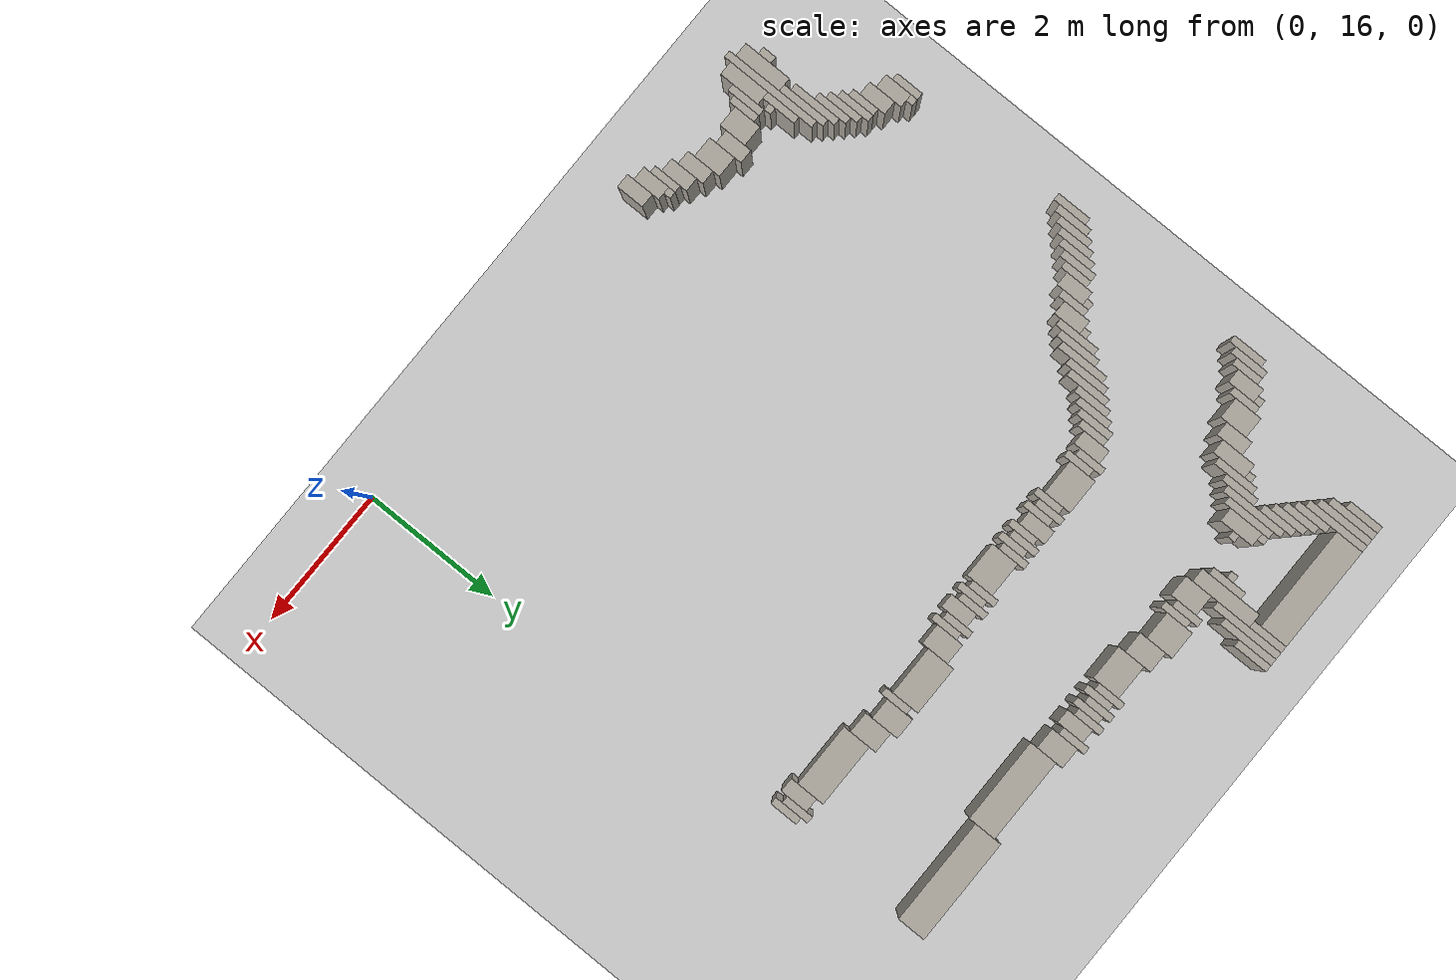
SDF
<sdf version="1.6">
 <world name="willow_office">
  <include><uri>model://sun</uri></include>
  <include><uri>model://ground_plane</uri></include>
  <model name="willow_office_walls">
   <static>true</static>
   <link name="w0973">
    <pose>-7.135 16.762 0.500 0 0 0</pose>
    <collision name="c"><geometry><box><size>0.100 1.400 1.000</size></box></geometry></collision>
    <visual name="v">
     <geometry><box><size>0.100 1.400 1.000</size></box></geometry>
     <material><ambient>0.68 0.66 0.62 1</ambient><diffuse>0.68 0.66 0.62 1</diffuse></material>
    </visual>
   </link>
   <link name="w0974">
    <pose>-5.085 16.262 0.500 0 0 0</pose>
    <collision name="c"><geometry><box><size>0.200 0.400 1.000</size></box></geometry></collision>
    <visual name="v">
     <geometry><box><size>0.200 0.400 1.000</size></box></geometry>
     <material><ambient>0.68 0.66 0.62 1</ambient><diffuse>0.68 0.66 0.62 1</diffuse></material>
    </visual>
   </link>
   <link name="w0977">
    <pose>-7.285 16.512 0.500 0 0 0</pose>
    <collision name="c"><geometry><box><size>0.200 0.700 1.000</size></box></geometry></collision>
    <visual name="v">
     <geometry><box><size>0.200 0.700 1.000</size></box></geometry>
     <material><ambient>0.68 0.66 0.62 1</ambient><diffuse>0.68 0.66 0.62 1</diffuse></material>
    </visual>
   </link>
   <link name="w0978">
    <pose>-6.985 16.462 0.500 0 0 0</pose>
    <collision name="c"><geometry><box><size>0.200 0.600 1.000</size></box></geometry></collision>
    <visual name="v">
     <geometry><box><size>0.200 0.600 1.000</size></box></geometry>
     <material><ambient>0.68 0.66 0.62 1</ambient><diffuse>0.68 0.66 0.62 1</diffuse></material>
    </visual>
   </link>
   <link name="w0979">
    <pose>-5.285 16.362 0.500 0 0 0</pose>
    <collision name="c"><geometry><box><size>0.200 0.400 1.000</size></box></geometry></collision>
    <visual name="v">
     <geometry><box><size>0.200 0.400 1.000</size></box></geometry>
     <material><ambient>0.68 0.66 0.62 1</ambient><diffuse>0.68 0.66 0.62 1</diffuse></material>
    </visual>
   </link>
   <link name="w0983">
    <pose>-5.435 16.462 0.500 0 0 0</pose>
    <collision name="c"><geometry><box><size>0.100 0.400 1.000</size></box></geometry></collision>
    <visual name="v">
     <geometry><box><size>0.100 0.400 1.000</size></box></geometry>
     <material><ambient>0.68 0.66 0.62 1</ambient><diffuse>0.68 0.66 0.62 1</diffuse></material>
    </visual>
   </link>
   <link name="w0986">
    <pose>-7.435 16.462 0.500 0 0 0</pose>
    <collision name="c"><geometry><box><size>0.100 0.200 1.000</size></box></geometry></collision>
    <visual name="v">
     <geometry><box><size>0.100 0.200 1.000</size></box></geometry>
     <material><ambient>0.68 0.66 0.62 1</ambient><diffuse>0.68 0.66 0.62 1</diffuse></material>
    </visual>
   </link>
   <link name="w0987">
    <pose>-6.835 16.612 0.500 0 0 0</pose>
    <collision name="c"><geometry><box><size>0.100 0.500 1.000</size></box></geometry></collision>
    <visual name="v">
     <geometry><box><size>0.100 0.500 1.000</size></box></geometry>
     <material><ambient>0.68 0.66 0.62 1</ambient><diffuse>0.68 0.66 0.62 1</diffuse></material>
    </visual>
   </link>
   <link name="w0988">
    <pose>-5.585 16.562 0.500 0 0 0</pose>
    <collision name="c"><geometry><box><size>0.200 0.400 1.000</size></box></geometry></collision>
    <visual name="v">
     <geometry><box><size>0.200 0.400 1.000</size></box></geometry>
     <material><ambient>0.68 0.66 0.62 1</ambient><diffuse>0.68 0.66 0.62 1</diffuse></material>
    </visual>
   </link>
   <link name="w0990">
    <pose>-6.735 16.662 0.500 0 0 0</pose>
    <collision name="c"><geometry><box><size>0.100 0.400 1.000</size></box></geometry></collision>
    <visual name="v">
     <geometry><box><size>0.100 0.400 1.000</size></box></geometry>
     <material><ambient>0.68 0.66 0.62 1</ambient><diffuse>0.68 0.66 0.62 1</diffuse></material>
    </visual>
   </link>
   <link name="w0991">
    <pose>-5.785 16.662 0.500 0 0 0</pose>
    <collision name="c"><geometry><box><size>0.200 0.400 1.000</size></box></geometry></collision>
    <visual name="v">
     <geometry><box><size>0.200 0.400 1.000</size></box></geometry>
     <material><ambient>0.68 0.66 0.62 1</ambient><diffuse>0.68 0.66 0.62 1</diffuse></material>
    </visual>
   </link>
   <link name="w0993">
    <pose>-6.535 16.762 0.500 0 0 0</pose>
    <collision name="c"><geometry><box><size>0.300 0.400 1.000</size></box></geometry></collision>
    <visual name="v">
     <geometry><box><size>0.300 0.400 1.000</size></box></geometry>
     <material><ambient>0.68 0.66 0.62 1</ambient><diffuse>0.68 0.66 0.62 1</diffuse></material>
    </visual>
   </link>
   <link name="w0994">
    <pose>-6.035 16.762 0.500 0 0 0</pose>
    <collision name="c"><geometry><box><size>0.300 0.400 1.000</size></box></geometry></collision>
    <visual name="v">
     <geometry><box><size>0.300 0.400 1.000</size></box></geometry>
     <material><ambient>0.68 0.66 0.62 1</ambient><diffuse>0.68 0.66 0.62 1</diffuse></material>
    </visual>
   </link>
   <link name="w0995">
    <pose>-5.335 16.612 0.500 0 0 0</pose>
    <collision name="c"><geometry><box><size>0.100 0.100 1.000</size></box></geometry></collision>
    <visual name="v">
     <geometry><box><size>0.100 0.100 1.000</size></box></geometry>
     <material><ambient>0.68 0.66 0.62 1</ambient><diffuse>0.68 0.66 0.62 1</diffuse></material>
    </visual>
   </link>
   <link name="w0998">
    <pose>-6.285 16.862 0.500 0 0 0</pose>
    <collision name="c"><geometry><box><size>0.200 0.400 1.000</size></box></geometry></collision>
    <visual name="v">
     <geometry><box><size>0.200 0.400 1.000</size></box></geometry>
     <material><ambient>0.68 0.66 0.62 1</ambient><diffuse>0.68 0.66 0.62 1</diffuse></material>
    </visual>
   </link>
   <link name="w0999">
    <pose>-7.035 17.012 0.500 0 0 0</pose>
    <collision name="c"><geometry><box><size>0.100 0.500 1.000</size></box></geometry></collision>
    <visual name="v">
     <geometry><box><size>0.100 0.500 1.000</size></box></geometry>
     <material><ambient>0.68 0.66 0.62 1</ambient><diffuse>0.68 0.66 0.62 1</diffuse></material>
    </visual>
   </link>
   <link name="w1001">
    <pose>-7.235 17.212 0.500 0 0 0</pose>
    <collision name="c"><geometry><box><size>0.100 0.700 1.000</size></box></geometry></collision>
    <visual name="v">
     <geometry><box><size>0.100 0.700 1.000</size></box></geometry>
     <material><ambient>0.68 0.66 0.62 1</ambient><diffuse>0.68 0.66 0.62 1</diffuse></material>
    </visual>
   </link>
   <link name="w1002">
    <pose>-6.935 16.912 0.500 0 0 0</pose>
    <collision name="c"><geometry><box><size>0.100 0.100 1.000</size></box></geometry></collision>
    <visual name="v">
     <geometry><box><size>0.100 0.100 1.000</size></box></geometry>
     <material><ambient>0.68 0.66 0.62 1</ambient><diffuse>0.68 0.66 0.62 1</diffuse></material>
    </visual>
   </link>
   <link name="w1005">
    <pose>-7.335 17.312 0.500 0 0 0</pose>
    <collision name="c"><geometry><box><size>0.100 0.700 1.000</size></box></geometry></collision>
    <visual name="v">
     <geometry><box><size>0.100 0.700 1.000</size></box></geometry>
     <material><ambient>0.68 0.66 0.62 1</ambient><diffuse>0.68 0.66 0.62 1</diffuse></material>
    </visual>
   </link>
   <link name="w1011">
    <pose>-7.435 17.512 0.500 0 0 0</pose>
    <collision name="c"><geometry><box><size>0.100 0.500 1.000</size></box></geometry></collision>
    <visual name="v">
     <geometry><box><size>0.100 0.500 1.000</size></box></geometry>
     <material><ambient>0.68 0.66 0.62 1</ambient><diffuse>0.68 0.66 0.62 1</diffuse></material>
    </visual>
   </link>
   <link name="w1012">
    <pose>-7.535 17.612 0.500 0 0 0</pose>
    <collision name="c"><geometry><box><size>0.100 0.500 1.000</size></box></geometry></collision>
    <visual name="v">
     <geometry><box><size>0.100 0.500 1.000</size></box></geometry>
     <material><ambient>0.68 0.66 0.62 1</ambient><diffuse>0.68 0.66 0.62 1</diffuse></material>
    </visual>
   </link>
   <link name="w1015">
    <pose>-7.635 17.712 0.500 0 0 0</pose>
    <collision name="c"><geometry><box><size>0.100 0.500 1.000</size></box></geometry></collision>
    <visual name="v">
     <geometry><box><size>0.100 0.500 1.000</size></box></geometry>
     <material><ambient>0.68 0.66 0.62 1</ambient><diffuse>0.68 0.66 0.62 1</diffuse></material>
    </visual>
   </link>
   <link name="w1019">
    <pose>-7.735 17.762 0.500 0 0 0</pose>
    <collision name="c"><geometry><box><size>0.100 0.400 1.000</size></box></geometry></collision>
    <visual name="v">
     <geometry><box><size>0.100 0.400 1.000</size></box></geometry>
     <material><ambient>0.68 0.66 0.62 1</ambient><diffuse>0.68 0.66 0.62 1</diffuse></material>
    </visual>
   </link>
   <link name="w1021">
    <pose>-7.885 17.862 0.500 0 0 0</pose>
    <collision name="c"><geometry><box><size>0.200 0.400 1.000</size></box></geometry></collision>
    <visual name="v">
     <geometry><box><size>0.200 0.400 1.000</size></box></geometry>
     <material><ambient>0.68 0.66 0.62 1</ambient><diffuse>0.68 0.66 0.62 1</diffuse></material>
    </visual>
   </link>
   <link name="w1026">
    <pose>-8.085 17.962 0.500 0 0 0</pose>
    <collision name="c"><geometry><box><size>0.200 0.400 1.000</size></box></geometry></collision>
    <visual name="v">
     <geometry><box><size>0.200 0.400 1.000</size></box></geometry>
     <material><ambient>0.68 0.66 0.62 1</ambient><diffuse>0.68 0.66 0.62 1</diffuse></material>
    </visual>
   </link>
   <link name="w1028">
    <pose>-8.235 18.062 0.500 0 0 0</pose>
    <collision name="c"><geometry><box><size>0.100 0.400 1.000</size></box></geometry></collision>
    <visual name="v">
     <geometry><box><size>0.100 0.400 1.000</size></box></geometry>
     <material><ambient>0.68 0.66 0.62 1</ambient><diffuse>0.68 0.66 0.62 1</diffuse></material>
    </visual>
   </link>
   <link name="w1039">
    <pose>-8.135 18.212 0.500 0 0 0</pose>
    <collision name="c"><geometry><box><size>0.100 0.100 1.000</size></box></geometry></collision>
    <visual name="v">
     <geometry><box><size>0.100 0.100 1.000</size></box></geometry>
     <material><ambient>0.68 0.66 0.62 1</ambient><diffuse>0.68 0.66 0.62 1</diffuse></material>
    </visual>
   </link>
   <link name="w1137">
    <pose>-8.335 20.612 0.500 0 0 0</pose>
    <collision name="c"><geometry><box><size>0.100 0.500 1.000</size></box></geometry></collision>
    <visual name="v">
     <geometry><box><size>0.100 0.500 1.000</size></box></geometry>
     <material><ambient>0.68 0.66 0.62 1</ambient><diffuse>0.68 0.66 0.62 1</diffuse></material>
    </visual>
   </link>
   <link name="w1138">
    <pose>-8.235 20.712 0.500 0 0 0</pose>
    <collision name="c"><geometry><box><size>0.100 0.500 1.000</size></box></geometry></collision>
    <visual name="v">
     <geometry><box><size>0.100 0.500 1.000</size></box></geometry>
     <material><ambient>0.68 0.66 0.62 1</ambient><diffuse>0.68 0.66 0.62 1</diffuse></material>
    </visual>
   </link>
   <link name="w1140">
    <pose>-8.135 20.812 0.500 0 0 0</pose>
    <collision name="c"><geometry><box><size>0.100 0.500 1.000</size></box></geometry></collision>
    <visual name="v">
     <geometry><box><size>0.100 0.500 1.000</size></box></geometry>
     <material><ambient>0.68 0.66 0.62 1</ambient><diffuse>0.68 0.66 0.62 1</diffuse></material>
    </visual>
   </link>
   <link name="w1142">
    <pose>-8.035 20.912 0.500 0 0 0</pose>
    <collision name="c"><geometry><box><size>0.100 0.500 1.000</size></box></geometry></collision>
    <visual name="v">
     <geometry><box><size>0.100 0.500 1.000</size></box></geometry>
     <material><ambient>0.68 0.66 0.62 1</ambient><diffuse>0.68 0.66 0.62 1</diffuse></material>
    </visual>
   </link>
   <link name="w1144">
    <pose>-7.935 21.012 0.500 0 0 0</pose>
    <collision name="c"><geometry><box><size>0.100 0.500 1.000</size></box></geometry></collision>
    <visual name="v">
     <geometry><box><size>0.100 0.500 1.000</size></box></geometry>
     <material><ambient>0.68 0.66 0.62 1</ambient><diffuse>0.68 0.66 0.62 1</diffuse></material>
    </visual>
   </link>
   <link name="w1146">
    <pose>-7.835 21.112 0.500 0 0 0</pose>
    <collision name="c"><geometry><box><size>0.100 0.500 1.000</size></box></geometry></collision>
    <visual name="v">
     <geometry><box><size>0.100 0.500 1.000</size></box></geometry>
     <material><ambient>0.68 0.66 0.62 1</ambient><diffuse>0.68 0.66 0.62 1</diffuse></material>
    </visual>
   </link>
   <link name="w1148">
    <pose>-7.735 21.162 0.500 0 0 0</pose>
    <collision name="c"><geometry><box><size>0.100 0.400 1.000</size></box></geometry></collision>
    <visual name="v">
     <geometry><box><size>0.100 0.400 1.000</size></box></geometry>
     <material><ambient>0.68 0.66 0.62 1</ambient><diffuse>0.68 0.66 0.62 1</diffuse></material>
    </visual>
   </link>
   <link name="w1150">
    <pose>-7.585 21.262 0.500 0 0 0</pose>
    <collision name="c"><geometry><box><size>0.200 0.400 1.000</size></box></geometry></collision>
    <visual name="v">
     <geometry><box><size>0.200 0.400 1.000</size></box></geometry>
     <material><ambient>0.68 0.66 0.62 1</ambient><diffuse>0.68 0.66 0.62 1</diffuse></material>
    </visual>
   </link>
   <link name="w1156">
    <pose>-7.435 21.362 0.500 0 0 0</pose>
    <collision name="c"><geometry><box><size>0.100 0.400 1.000</size></box></geometry></collision>
    <visual name="v">
     <geometry><box><size>0.100 0.400 1.000</size></box></geometry>
     <material><ambient>0.68 0.66 0.62 1</ambient><diffuse>0.68 0.66 0.62 1</diffuse></material>
    </visual>
   </link>
   <link name="w1161">
    <pose>-7.285 21.462 0.500 0 0 0</pose>
    <collision name="c"><geometry><box><size>0.200 0.400 1.000</size></box></geometry></collision>
    <visual name="v">
     <geometry><box><size>0.200 0.400 1.000</size></box></geometry>
     <material><ambient>0.68 0.66 0.62 1</ambient><diffuse>0.68 0.66 0.62 1</diffuse></material>
    </visual>
   </link>
   <link name="w1166">
    <pose>-7.135 21.662 0.500 0 0 0</pose>
    <collision name="c"><geometry><box><size>0.100 0.600 1.000</size></box></geometry></collision>
    <visual name="v">
     <geometry><box><size>0.100 0.600 1.000</size></box></geometry>
     <material><ambient>0.68 0.66 0.62 1</ambient><diffuse>0.68 0.66 0.62 1</diffuse></material>
    </visual>
   </link>
   <link name="w1169">
    <pose>-7.535 21.512 0.500 0 0 0</pose>
    <collision name="c"><geometry><box><size>0.100 0.100 1.000</size></box></geometry></collision>
    <visual name="v">
     <geometry><box><size>0.100 0.100 1.000</size></box></geometry>
     <material><ambient>0.68 0.66 0.62 1</ambient><diffuse>0.68 0.66 0.62 1</diffuse></material>
    </visual>
   </link>
   <link name="w1170">
    <pose>-7.035 21.762 0.500 0 0 0</pose>
    <collision name="c"><geometry><box><size>0.100 0.600 1.000</size></box></geometry></collision>
    <visual name="v">
     <geometry><box><size>0.100 0.600 1.000</size></box></geometry>
     <material><ambient>0.68 0.66 0.62 1</ambient><diffuse>0.68 0.66 0.62 1</diffuse></material>
    </visual>
   </link>
   <link name="w1174">
    <pose>-6.935 21.912 0.500 0 0 0</pose>
    <collision name="c"><geometry><box><size>0.100 0.700 1.000</size></box></geometry></collision>
    <visual name="v">
     <geometry><box><size>0.100 0.700 1.000</size></box></geometry>
     <material><ambient>0.68 0.66 0.62 1</ambient><diffuse>0.68 0.66 0.62 1</diffuse></material>
    </visual>
   </link>
   <link name="w1178">
    <pose>-7.235 21.712 0.500 0 0 0</pose>
    <collision name="c"><geometry><box><size>0.100 0.100 1.000</size></box></geometry></collision>
    <visual name="v">
     <geometry><box><size>0.100 0.100 1.000</size></box></geometry>
     <material><ambient>0.68 0.66 0.62 1</ambient><diffuse>0.68 0.66 0.62 1</diffuse></material>
    </visual>
   </link>
   <link name="w1184">
    <pose>-6.835 22.062 0.500 0 0 0</pose>
    <collision name="c"><geometry><box><size>0.100 0.600 1.000</size></box></geometry></collision>
    <visual name="v">
     <geometry><box><size>0.100 0.600 1.000</size></box></geometry>
     <material><ambient>0.68 0.66 0.62 1</ambient><diffuse>0.68 0.66 0.62 1</diffuse></material>
    </visual>
   </link>
   <link name="w1189">
    <pose>-6.735 22.162 0.500 0 0 0</pose>
    <collision name="c"><geometry><box><size>0.100 0.600 1.000</size></box></geometry></collision>
    <visual name="v">
     <geometry><box><size>0.100 0.600 1.000</size></box></geometry>
     <material><ambient>0.68 0.66 0.62 1</ambient><diffuse>0.68 0.66 0.62 1</diffuse></material>
    </visual>
   </link>
   <link name="w1199">
    <pose>-6.635 22.312 0.500 0 0 0</pose>
    <collision name="c"><geometry><box><size>0.100 0.500 1.000</size></box></geometry></collision>
    <visual name="v">
     <geometry><box><size>0.100 0.500 1.000</size></box></geometry>
     <material><ambient>0.68 0.66 0.62 1</ambient><diffuse>0.68 0.66 0.62 1</diffuse></material>
    </visual>
   </link>
   <link name="w1206">
    <pose>-6.535 22.412 0.500 0 0 0</pose>
    <collision name="c"><geometry><box><size>0.100 0.500 1.000</size></box></geometry></collision>
    <visual name="v">
     <geometry><box><size>0.100 0.500 1.000</size></box></geometry>
     <material><ambient>0.68 0.66 0.62 1</ambient><diffuse>0.68 0.66 0.62 1</diffuse></material>
    </visual>
   </link>
   <link name="w1212">
    <pose>-6.435 22.512 0.500 0 0 0</pose>
    <collision name="c"><geometry><box><size>0.100 0.500 1.000</size></box></geometry></collision>
    <visual name="v">
     <geometry><box><size>0.100 0.500 1.000</size></box></geometry>
     <material><ambient>0.68 0.66 0.62 1</ambient><diffuse>0.68 0.66 0.62 1</diffuse></material>
    </visual>
   </link>
   <link name="w1216">
    <pose>-6.335 22.562 0.500 0 0 0</pose>
    <collision name="c"><geometry><box><size>0.100 0.400 1.000</size></box></geometry></collision>
    <visual name="v">
     <geometry><box><size>0.100 0.400 1.000</size></box></geometry>
     <material><ambient>0.68 0.66 0.62 1</ambient><diffuse>0.68 0.66 0.62 1</diffuse></material>
    </visual>
   </link>
   <link name="w1217">
    <pose>-0.585 22.562 0.500 0 0 0</pose>
    <collision name="c"><geometry><box><size>0.200 0.400 1.000</size></box></geometry></collision>
    <visual name="v">
     <geometry><box><size>0.200 0.400 1.000</size></box></geometry>
     <material><ambient>0.68 0.66 0.62 1</ambient><diffuse>0.68 0.66 0.62 1</diffuse></material>
    </visual>
   </link>
   <link name="w1218">
    <pose>-0.335 22.562 0.500 0 0 0</pose>
    <collision name="c"><geometry><box><size>0.100 0.400 1.000</size></box></geometry></collision>
    <visual name="v">
     <geometry><box><size>0.100 0.400 1.000</size></box></geometry>
     <material><ambient>0.68 0.66 0.62 1</ambient><diffuse>0.68 0.66 0.62 1</diffuse></material>
    </visual>
   </link>
   <link name="w1229">
    <pose>-6.185 22.662 0.500 0 0 0</pose>
    <collision name="c"><geometry><box><size>0.200 0.400 1.000</size></box></geometry></collision>
    <visual name="v">
     <geometry><box><size>0.200 0.400 1.000</size></box></geometry>
     <material><ambient>0.68 0.66 0.62 1</ambient><diffuse>0.68 0.66 0.62 1</diffuse></material>
    </visual>
   </link>
   <link name="w1230">
    <pose>-5.935 22.662 0.500 0 0 0</pose>
    <collision name="c"><geometry><box><size>0.100 0.400 1.000</size></box></geometry></collision>
    <visual name="v">
     <geometry><box><size>0.100 0.400 1.000</size></box></geometry>
     <material><ambient>0.68 0.66 0.62 1</ambient><diffuse>0.68 0.66 0.62 1</diffuse></material>
    </visual>
   </link>
   <link name="w1231">
    <pose>-5.335 22.662 0.500 0 0 0</pose>
    <collision name="c"><geometry><box><size>0.100 0.400 1.000</size></box></geometry></collision>
    <visual name="v">
     <geometry><box><size>0.100 0.400 1.000</size></box></geometry>
     <material><ambient>0.68 0.66 0.62 1</ambient><diffuse>0.68 0.66 0.62 1</diffuse></material>
    </visual>
   </link>
   <link name="w1232">
    <pose>-5.135 22.662 0.500 0 0 0</pose>
    <collision name="c"><geometry><box><size>0.100 0.400 1.000</size></box></geometry></collision>
    <visual name="v">
     <geometry><box><size>0.100 0.400 1.000</size></box></geometry>
     <material><ambient>0.68 0.66 0.62 1</ambient><diffuse>0.68 0.66 0.62 1</diffuse></material>
    </visual>
   </link>
   <link name="w1233">
    <pose>-4.835 22.662 0.500 0 0 0</pose>
    <collision name="c"><geometry><box><size>0.100 0.400 1.000</size></box></geometry></collision>
    <visual name="v">
     <geometry><box><size>0.100 0.400 1.000</size></box></geometry>
     <material><ambient>0.68 0.66 0.62 1</ambient><diffuse>0.68 0.66 0.62 1</diffuse></material>
    </visual>
   </link>
   <link name="w1234">
    <pose>-4.635 22.662 0.500 0 0 0</pose>
    <collision name="c"><geometry><box><size>0.100 0.400 1.000</size></box></geometry></collision>
    <visual name="v">
     <geometry><box><size>0.100 0.400 1.000</size></box></geometry>
     <material><ambient>0.68 0.66 0.62 1</ambient><diffuse>0.68 0.66 0.62 1</diffuse></material>
    </visual>
   </link>
   <link name="w1235">
    <pose>-4.235 22.662 0.500 0 0 0</pose>
    <collision name="c"><geometry><box><size>0.500 0.400 1.000</size></box></geometry></collision>
    <visual name="v">
     <geometry><box><size>0.500 0.400 1.000</size></box></geometry>
     <material><ambient>0.68 0.66 0.62 1</ambient><diffuse>0.68 0.66 0.62 1</diffuse></material>
    </visual>
   </link>
   <link name="w1236">
    <pose>-3.835 22.662 0.500 0 0 0</pose>
    <collision name="c"><geometry><box><size>0.100 0.400 1.000</size></box></geometry></collision>
    <visual name="v">
     <geometry><box><size>0.100 0.400 1.000</size></box></geometry>
     <material><ambient>0.68 0.66 0.62 1</ambient><diffuse>0.68 0.66 0.62 1</diffuse></material>
    </visual>
   </link>
   <link name="w1237">
    <pose>-3.585 22.662 0.500 0 0 0</pose>
    <collision name="c"><geometry><box><size>0.200 0.400 1.000</size></box></geometry></collision>
    <visual name="v">
     <geometry><box><size>0.200 0.400 1.000</size></box></geometry>
     <material><ambient>0.68 0.66 0.62 1</ambient><diffuse>0.68 0.66 0.62 1</diffuse></material>
    </visual>
   </link>
   <link name="w1238">
    <pose>-3.335 22.662 0.500 0 0 0</pose>
    <collision name="c"><geometry><box><size>0.100 0.400 1.000</size></box></geometry></collision>
    <visual name="v">
     <geometry><box><size>0.100 0.400 1.000</size></box></geometry>
     <material><ambient>0.68 0.66 0.62 1</ambient><diffuse>0.68 0.66 0.62 1</diffuse></material>
    </visual>
   </link>
   <link name="w1239">
    <pose>-1.135 22.662 0.500 0 0 0</pose>
    <collision name="c"><geometry><box><size>0.900 0.400 1.000</size></box></geometry></collision>
    <visual name="v">
     <geometry><box><size>0.900 0.400 1.000</size></box></geometry>
     <material><ambient>0.68 0.66 0.62 1</ambient><diffuse>0.68 0.66 0.62 1</diffuse></material>
    </visual>
   </link>
   <link name="w1240">
    <pose>-0.435 22.662 0.500 0 0 0</pose>
    <collision name="c"><geometry><box><size>0.100 0.400 1.000</size></box></geometry></collision>
    <visual name="v">
     <geometry><box><size>0.100 0.400 1.000</size></box></geometry>
     <material><ambient>0.68 0.66 0.62 1</ambient><diffuse>0.68 0.66 0.62 1</diffuse></material>
    </visual>
   </link>
   <link name="w1249">
    <pose>-6.035 22.762 0.500 0 0 0</pose>
    <collision name="c"><geometry><box><size>0.100 0.400 1.000</size></box></geometry></collision>
    <visual name="v">
     <geometry><box><size>0.100 0.400 1.000</size></box></geometry>
     <material><ambient>0.68 0.66 0.62 1</ambient><diffuse>0.68 0.66 0.62 1</diffuse></material>
    </visual>
   </link>
   <link name="w1250">
    <pose>-5.635 22.762 0.500 0 0 0</pose>
    <collision name="c"><geometry><box><size>0.500 0.400 1.000</size></box></geometry></collision>
    <visual name="v">
     <geometry><box><size>0.500 0.400 1.000</size></box></geometry>
     <material><ambient>0.68 0.66 0.62 1</ambient><diffuse>0.68 0.66 0.62 1</diffuse></material>
    </visual>
   </link>
   <link name="w1251">
    <pose>-5.235 22.762 0.500 0 0 0</pose>
    <collision name="c"><geometry><box><size>0.100 0.400 1.000</size></box></geometry></collision>
    <visual name="v">
     <geometry><box><size>0.100 0.400 1.000</size></box></geometry>
     <material><ambient>0.68 0.66 0.62 1</ambient><diffuse>0.68 0.66 0.62 1</diffuse></material>
    </visual>
   </link>
   <link name="w1252">
    <pose>-4.985 22.762 0.500 0 0 0</pose>
    <collision name="c"><geometry><box><size>0.200 0.400 1.000</size></box></geometry></collision>
    <visual name="v">
     <geometry><box><size>0.200 0.400 1.000</size></box></geometry>
     <material><ambient>0.68 0.66 0.62 1</ambient><diffuse>0.68 0.66 0.62 1</diffuse></material>
    </visual>
   </link>
   <link name="w1253">
    <pose>-4.735 22.762 0.500 0 0 0</pose>
    <collision name="c"><geometry><box><size>0.100 0.400 1.000</size></box></geometry></collision>
    <visual name="v">
     <geometry><box><size>0.100 0.400 1.000</size></box></geometry>
     <material><ambient>0.68 0.66 0.62 1</ambient><diffuse>0.68 0.66 0.62 1</diffuse></material>
    </visual>
   </link>
   <link name="w1254">
    <pose>-4.535 22.762 0.500 0 0 0</pose>
    <collision name="c"><geometry><box><size>0.100 0.400 1.000</size></box></geometry></collision>
    <visual name="v">
     <geometry><box><size>0.100 0.400 1.000</size></box></geometry>
     <material><ambient>0.68 0.66 0.62 1</ambient><diffuse>0.68 0.66 0.62 1</diffuse></material>
    </visual>
   </link>
   <link name="w1255">
    <pose>-3.935 22.762 0.500 0 0 0</pose>
    <collision name="c"><geometry><box><size>0.100 0.400 1.000</size></box></geometry></collision>
    <visual name="v">
     <geometry><box><size>0.100 0.400 1.000</size></box></geometry>
     <material><ambient>0.68 0.66 0.62 1</ambient><diffuse>0.68 0.66 0.62 1</diffuse></material>
    </visual>
   </link>
   <link name="w1256">
    <pose>-3.735 22.762 0.500 0 0 0</pose>
    <collision name="c"><geometry><box><size>0.100 0.400 1.000</size></box></geometry></collision>
    <visual name="v">
     <geometry><box><size>0.100 0.400 1.000</size></box></geometry>
     <material><ambient>0.68 0.66 0.62 1</ambient><diffuse>0.68 0.66 0.62 1</diffuse></material>
    </visual>
   </link>
   <link name="w1257">
    <pose>-3.435 22.762 0.500 0 0 0</pose>
    <collision name="c"><geometry><box><size>0.100 0.400 1.000</size></box></geometry></collision>
    <visual name="v">
     <geometry><box><size>0.100 0.400 1.000</size></box></geometry>
     <material><ambient>0.68 0.66 0.62 1</ambient><diffuse>0.68 0.66 0.62 1</diffuse></material>
    </visual>
   </link>
   <link name="w1258">
    <pose>-3.135 22.762 0.500 0 0 0</pose>
    <collision name="c"><geometry><box><size>0.300 0.400 1.000</size></box></geometry></collision>
    <visual name="v">
     <geometry><box><size>0.300 0.400 1.000</size></box></geometry>
     <material><ambient>0.68 0.66 0.62 1</ambient><diffuse>0.68 0.66 0.62 1</diffuse></material>
    </visual>
   </link>
   <link name="w1259">
    <pose>-2.235 22.762 0.500 0 0 0</pose>
    <collision name="c"><geometry><box><size>0.100 0.400 1.000</size></box></geometry></collision>
    <visual name="v">
     <geometry><box><size>0.100 0.400 1.000</size></box></geometry>
     <material><ambient>0.68 0.66 0.62 1</ambient><diffuse>0.68 0.66 0.62 1</diffuse></material>
    </visual>
   </link>
   <link name="w1260">
    <pose>-1.735 22.762 0.500 0 0 0</pose>
    <collision name="c"><geometry><box><size>0.300 0.400 1.000</size></box></geometry></collision>
    <visual name="v">
     <geometry><box><size>0.300 0.400 1.000</size></box></geometry>
     <material><ambient>0.68 0.66 0.62 1</ambient><diffuse>0.68 0.66 0.62 1</diffuse></material>
    </visual>
   </link>
   <link name="w1263">
    <pose>-2.635 22.862 0.500 0 0 0</pose>
    <collision name="c"><geometry><box><size>0.700 0.400 1.000</size></box></geometry></collision>
    <visual name="v">
     <geometry><box><size>0.700 0.400 1.000</size></box></geometry>
     <material><ambient>0.68 0.66 0.62 1</ambient><diffuse>0.68 0.66 0.62 1</diffuse></material>
    </visual>
   </link>
   <link name="w1264">
    <pose>-2.035 22.862 0.500 0 0 0</pose>
    <collision name="c"><geometry><box><size>0.300 0.400 1.000</size></box></geometry></collision>
    <visual name="v">
     <geometry><box><size>0.300 0.400 1.000</size></box></geometry>
     <material><ambient>0.68 0.66 0.62 1</ambient><diffuse>0.68 0.66 0.62 1</diffuse></material>
    </visual>
   </link>
   <link name="w1271">
    <pose>-8.335 23.412 0.500 0 0 0</pose>
    <collision name="c"><geometry><box><size>0.100 0.500 1.000</size></box></geometry></collision>
    <visual name="v">
     <geometry><box><size>0.100 0.500 1.000</size></box></geometry>
     <material><ambient>0.68 0.66 0.62 1</ambient><diffuse>0.68 0.66 0.62 1</diffuse></material>
    </visual>
   </link>
   <link name="w1273">
    <pose>-8.235 23.512 0.500 0 0 0</pose>
    <collision name="c"><geometry><box><size>0.100 0.500 1.000</size></box></geometry></collision>
    <visual name="v">
     <geometry><box><size>0.100 0.500 1.000</size></box></geometry>
     <material><ambient>0.68 0.66 0.62 1</ambient><diffuse>0.68 0.66 0.62 1</diffuse></material>
    </visual>
   </link>
   <link name="w1276">
    <pose>-8.135 23.562 0.500 0 0 0</pose>
    <collision name="c"><geometry><box><size>0.100 0.400 1.000</size></box></geometry></collision>
    <visual name="v">
     <geometry><box><size>0.100 0.400 1.000</size></box></geometry>
     <material><ambient>0.68 0.66 0.62 1</ambient><diffuse>0.68 0.66 0.62 1</diffuse></material>
    </visual>
   </link>
   <link name="w1277">
    <pose>-7.985 23.662 0.500 0 0 0</pose>
    <collision name="c"><geometry><box><size>0.200 0.400 1.000</size></box></geometry></collision>
    <visual name="v">
     <geometry><box><size>0.200 0.400 1.000</size></box></geometry>
     <material><ambient>0.68 0.66 0.62 1</ambient><diffuse>0.68 0.66 0.62 1</diffuse></material>
    </visual>
   </link>
   <link name="w1278">
    <pose>-7.835 23.762 0.500 0 0 0</pose>
    <collision name="c"><geometry><box><size>0.100 0.400 1.000</size></box></geometry></collision>
    <visual name="v">
     <geometry><box><size>0.100 0.400 1.000</size></box></geometry>
     <material><ambient>0.68 0.66 0.62 1</ambient><diffuse>0.68 0.66 0.62 1</diffuse></material>
    </visual>
   </link>
   <link name="w1280">
    <pose>-7.635 23.862 0.500 0 0 0</pose>
    <collision name="c"><geometry><box><size>0.300 0.400 1.000</size></box></geometry></collision>
    <visual name="v">
     <geometry><box><size>0.300 0.400 1.000</size></box></geometry>
     <material><ambient>0.68 0.66 0.62 1</ambient><diffuse>0.68 0.66 0.62 1</diffuse></material>
    </visual>
   </link>
   <link name="w1281">
    <pose>-7.385 23.962 0.500 0 0 0</pose>
    <collision name="c"><geometry><box><size>0.200 0.400 1.000</size></box></geometry></collision>
    <visual name="v">
     <geometry><box><size>0.200 0.400 1.000</size></box></geometry>
     <material><ambient>0.68 0.66 0.62 1</ambient><diffuse>0.68 0.66 0.62 1</diffuse></material>
    </visual>
   </link>
   <link name="w1284">
    <pose>-7.935 23.912 0.500 0 0 0</pose>
    <collision name="c"><geometry><box><size>0.100 0.100 1.000</size></box></geometry></collision>
    <visual name="v">
     <geometry><box><size>0.100 0.100 1.000</size></box></geometry>
     <material><ambient>0.68 0.66 0.62 1</ambient><diffuse>0.68 0.66 0.62 1</diffuse></material>
    </visual>
   </link>
   <link name="w1285">
    <pose>-7.185 24.112 0.500 0 0 0</pose>
    <collision name="c"><geometry><box><size>0.200 0.500 1.000</size></box></geometry></collision>
    <visual name="v">
     <geometry><box><size>0.200 0.500 1.000</size></box></geometry>
     <material><ambient>0.68 0.66 0.62 1</ambient><diffuse>0.68 0.66 0.62 1</diffuse></material>
    </visual>
   </link>
   <link name="w1286">
    <pose>-7.035 24.262 0.500 0 0 0</pose>
    <collision name="c"><geometry><box><size>0.100 0.600 1.000</size></box></geometry></collision>
    <visual name="v">
     <geometry><box><size>0.100 0.600 1.000</size></box></geometry>
     <material><ambient>0.68 0.66 0.62 1</ambient><diffuse>0.68 0.66 0.62 1</diffuse></material>
    </visual>
   </link>
   <link name="w1289">
    <pose>-6.935 24.412 0.500 0 0 0</pose>
    <collision name="c"><geometry><box><size>0.100 0.500 1.000</size></box></geometry></collision>
    <visual name="v">
     <geometry><box><size>0.100 0.500 1.000</size></box></geometry>
     <material><ambient>0.68 0.66 0.62 1</ambient><diffuse>0.68 0.66 0.62 1</diffuse></material>
    </visual>
   </link>
   <link name="w1292">
    <pose>-6.835 24.712 0.500 0 0 0</pose>
    <collision name="c"><geometry><box><size>0.100 0.900 1.000</size></box></geometry></collision>
    <visual name="v">
     <geometry><box><size>0.100 0.900 1.000</size></box></geometry>
     <material><ambient>0.68 0.66 0.62 1</ambient><diffuse>0.68 0.66 0.62 1</diffuse></material>
    </visual>
   </link>
   <link name="w1304">
    <pose>-7.135 24.412 0.500 0 0 0</pose>
    <collision name="c"><geometry><box><size>0.100 0.100 1.000</size></box></geometry></collision>
    <visual name="v">
     <geometry><box><size>0.100 0.100 1.000</size></box></geometry>
     <material><ambient>0.68 0.66 0.62 1</ambient><diffuse>0.68 0.66 0.62 1</diffuse></material>
    </visual>
   </link>
   <link name="w1305">
    <pose>-6.735 24.712 0.500 0 0 0</pose>
    <collision name="c"><geometry><box><size>0.100 0.700 1.000</size></box></geometry></collision>
    <visual name="v">
     <geometry><box><size>0.100 0.700 1.000</size></box></geometry>
     <material><ambient>0.68 0.66 0.62 1</ambient><diffuse>0.68 0.66 0.62 1</diffuse></material>
    </visual>
   </link>
   <link name="w1306">
    <pose>-2.285 24.562 0.500 0 0 0</pose>
    <collision name="c"><geometry><box><size>1.200 0.400 1.000</size></box></geometry></collision>
    <visual name="v">
     <geometry><box><size>1.200 0.400 1.000</size></box></geometry>
     <material><ambient>0.68 0.66 0.62 1</ambient><diffuse>0.68 0.66 0.62 1</diffuse></material>
    </visual>
   </link>
   <link name="w1324">
    <pose>-6.585 24.712 0.500 0 0 0</pose>
    <collision name="c"><geometry><box><size>0.200 0.500 1.000</size></box></geometry></collision>
    <visual name="v">
     <geometry><box><size>0.200 0.500 1.000</size></box></geometry>
     <material><ambient>0.68 0.66 0.62 1</ambient><diffuse>0.68 0.66 0.62 1</diffuse></material>
    </visual>
   </link>
   <link name="w1325">
    <pose>-4.235 24.662 0.500 0 0 0</pose>
    <collision name="c"><geometry><box><size>0.500 0.400 1.000</size></box></geometry></collision>
    <visual name="v">
     <geometry><box><size>0.500 0.400 1.000</size></box></geometry>
     <material><ambient>0.68 0.66 0.62 1</ambient><diffuse>0.68 0.66 0.62 1</diffuse></material>
    </visual>
   </link>
   <link name="w1326">
    <pose>-3.835 24.662 0.500 0 0 0</pose>
    <collision name="c"><geometry><box><size>0.100 0.400 1.000</size></box></geometry></collision>
    <visual name="v">
     <geometry><box><size>0.100 0.400 1.000</size></box></geometry>
     <material><ambient>0.68 0.66 0.62 1</ambient><diffuse>0.68 0.66 0.62 1</diffuse></material>
    </visual>
   </link>
   <link name="w1327">
    <pose>-3.635 24.662 0.500 0 0 0</pose>
    <collision name="c"><geometry><box><size>0.100 0.400 1.000</size></box></geometry></collision>
    <visual name="v">
     <geometry><box><size>0.100 0.400 1.000</size></box></geometry>
     <material><ambient>0.68 0.66 0.62 1</ambient><diffuse>0.68 0.66 0.62 1</diffuse></material>
    </visual>
   </link>
   <link name="w1328">
    <pose>-3.385 24.662 0.500 0 0 0</pose>
    <collision name="c"><geometry><box><size>0.200 0.400 1.000</size></box></geometry></collision>
    <visual name="v">
     <geometry><box><size>0.200 0.400 1.000</size></box></geometry>
     <material><ambient>0.68 0.66 0.62 1</ambient><diffuse>0.68 0.66 0.62 1</diffuse></material>
    </visual>
   </link>
   <link name="w1329">
    <pose>-3.035 24.662 0.500 0 0 0</pose>
    <collision name="c"><geometry><box><size>0.300 0.400 1.000</size></box></geometry></collision>
    <visual name="v">
     <geometry><box><size>0.300 0.400 1.000</size></box></geometry>
     <material><ambient>0.68 0.66 0.62 1</ambient><diffuse>0.68 0.66 0.62 1</diffuse></material>
    </visual>
   </link>
   <link name="w1330">
    <pose>-0.935 24.662 0.500 0 0 0</pose>
    <collision name="c"><geometry><box><size>1.500 0.400 1.000</size></box></geometry></collision>
    <visual name="v">
     <geometry><box><size>1.500 0.400 1.000</size></box></geometry>
     <material><ambient>0.68 0.66 0.62 1</ambient><diffuse>0.68 0.66 0.62 1</diffuse></material>
    </visual>
   </link>
   <link name="w1339">
    <pose>-5.535 24.762 0.500 0 0 0</pose>
    <collision name="c"><geometry><box><size>0.300 0.400 1.000</size></box></geometry></collision>
    <visual name="v">
     <geometry><box><size>0.300 0.400 1.000</size></box></geometry>
     <material><ambient>0.68 0.66 0.62 1</ambient><diffuse>0.68 0.66 0.62 1</diffuse></material>
    </visual>
   </link>
   <link name="w1340">
    <pose>-5.235 24.762 0.500 0 0 0</pose>
    <collision name="c"><geometry><box><size>0.100 0.400 1.000</size></box></geometry></collision>
    <visual name="v">
     <geometry><box><size>0.100 0.400 1.000</size></box></geometry>
     <material><ambient>0.68 0.66 0.62 1</ambient><diffuse>0.68 0.66 0.62 1</diffuse></material>
    </visual>
   </link>
   <link name="w1341">
    <pose>-4.635 24.762 0.500 0 0 0</pose>
    <collision name="c"><geometry><box><size>0.300 0.400 1.000</size></box></geometry></collision>
    <visual name="v">
     <geometry><box><size>0.300 0.400 1.000</size></box></geometry>
     <material><ambient>0.68 0.66 0.62 1</ambient><diffuse>0.68 0.66 0.62 1</diffuse></material>
    </visual>
   </link>
   <link name="w1342">
    <pose>-3.935 24.762 0.500 0 0 0</pose>
    <collision name="c"><geometry><box><size>0.100 0.400 1.000</size></box></geometry></collision>
    <visual name="v">
     <geometry><box><size>0.100 0.400 1.000</size></box></geometry>
     <material><ambient>0.68 0.66 0.62 1</ambient><diffuse>0.68 0.66 0.62 1</diffuse></material>
    </visual>
   </link>
   <link name="w1343">
    <pose>-3.735 24.762 0.500 0 0 0</pose>
    <collision name="c"><geometry><box><size>0.100 0.400 1.000</size></box></geometry></collision>
    <visual name="v">
     <geometry><box><size>0.100 0.400 1.000</size></box></geometry>
     <material><ambient>0.68 0.66 0.62 1</ambient><diffuse>0.68 0.66 0.62 1</diffuse></material>
    </visual>
   </link>
   <link name="w1344">
    <pose>-3.535 24.762 0.500 0 0 0</pose>
    <collision name="c"><geometry><box><size>0.100 0.400 1.000</size></box></geometry></collision>
    <visual name="v">
     <geometry><box><size>0.100 0.400 1.000</size></box></geometry>
     <material><ambient>0.68 0.66 0.62 1</ambient><diffuse>0.68 0.66 0.62 1</diffuse></material>
    </visual>
   </link>
   <link name="w1345">
    <pose>-3.235 24.762 0.500 0 0 0</pose>
    <collision name="c"><geometry><box><size>0.100 0.400 1.000</size></box></geometry></collision>
    <visual name="v">
     <geometry><box><size>0.100 0.400 1.000</size></box></geometry>
     <material><ambient>0.68 0.66 0.62 1</ambient><diffuse>0.68 0.66 0.62 1</diffuse></material>
    </visual>
   </link>
   <link name="w1349">
    <pose>-6.435 24.712 0.500 0 0 0</pose>
    <collision name="c"><geometry><box><size>0.100 0.100 1.000</size></box></geometry></collision>
    <visual name="v">
     <geometry><box><size>0.100 0.100 1.000</size></box></geometry>
     <material><ambient>0.68 0.66 0.62 1</ambient><diffuse>0.68 0.66 0.62 1</diffuse></material>
    </visual>
   </link>
   <link name="w1350">
    <pose>-5.785 25.112 0.500 0 0 0</pose>
    <collision name="c"><geometry><box><size>0.200 0.900 1.000</size></box></geometry></collision>
    <visual name="v">
     <geometry><box><size>0.200 0.900 1.000</size></box></geometry>
     <material><ambient>0.68 0.66 0.62 1</ambient><diffuse>0.68 0.66 0.62 1</diffuse></material>
    </visual>
   </link>
   <link name="w1351">
    <pose>-5.335 24.862 0.500 0 0 0</pose>
    <collision name="c"><geometry><box><size>0.100 0.400 1.000</size></box></geometry></collision>
    <visual name="v">
     <geometry><box><size>0.100 0.400 1.000</size></box></geometry>
     <material><ambient>0.68 0.66 0.62 1</ambient><diffuse>0.68 0.66 0.62 1</diffuse></material>
    </visual>
   </link>
   <link name="w1352">
    <pose>-4.985 24.862 0.500 0 0 0</pose>
    <collision name="c"><geometry><box><size>0.400 0.400 1.000</size></box></geometry></collision>
    <visual name="v">
     <geometry><box><size>0.400 0.400 1.000</size></box></geometry>
     <material><ambient>0.68 0.66 0.62 1</ambient><diffuse>0.68 0.66 0.62 1</diffuse></material>
    </visual>
   </link>
   <link name="w1354">
    <pose>-6.935 25.012 0.500 0 0 0</pose>
    <collision name="c"><geometry><box><size>0.100 0.500 1.000</size></box></geometry></collision>
    <visual name="v">
     <geometry><box><size>0.100 0.500 1.000</size></box></geometry>
     <material><ambient>0.68 0.66 0.62 1</ambient><diffuse>0.68 0.66 0.62 1</diffuse></material>
    </visual>
   </link>
   <link name="w1355">
    <pose>-5.935 25.012 0.500 0 0 0</pose>
    <collision name="c"><geometry><box><size>0.100 0.500 1.000</size></box></geometry></collision>
    <visual name="v">
     <geometry><box><size>0.100 0.500 1.000</size></box></geometry>
     <material><ambient>0.68 0.66 0.62 1</ambient><diffuse>0.68 0.66 0.62 1</diffuse></material>
    </visual>
   </link>
   <link name="w1356">
    <pose>-7.035 25.112 0.500 0 0 0</pose>
    <collision name="c"><geometry><box><size>0.100 0.500 1.000</size></box></geometry></collision>
    <visual name="v">
     <geometry><box><size>0.100 0.500 1.000</size></box></geometry>
     <material><ambient>0.68 0.66 0.62 1</ambient><diffuse>0.68 0.66 0.62 1</diffuse></material>
    </visual>
   </link>
   <link name="w1357">
    <pose>-7.135 25.212 0.500 0 0 0</pose>
    <collision name="c"><geometry><box><size>0.100 0.500 1.000</size></box></geometry></collision>
    <visual name="v">
     <geometry><box><size>0.100 0.500 1.000</size></box></geometry>
     <material><ambient>0.68 0.66 0.62 1</ambient><diffuse>0.68 0.66 0.62 1</diffuse></material>
    </visual>
   </link>
   <link name="w1358">
    <pose>-6.635 25.012 0.500 0 0 0</pose>
    <collision name="c"><geometry><box><size>0.100 0.100 1.000</size></box></geometry></collision>
    <visual name="v">
     <geometry><box><size>0.100 0.100 1.000</size></box></geometry>
     <material><ambient>0.68 0.66 0.62 1</ambient><diffuse>0.68 0.66 0.62 1</diffuse></material>
    </visual>
   </link>
   <link name="w1359">
    <pose>-6.035 25.012 0.500 0 0 0</pose>
    <collision name="c"><geometry><box><size>0.100 0.100 1.000</size></box></geometry></collision>
    <visual name="v">
     <geometry><box><size>0.100 0.100 1.000</size></box></geometry>
     <material><ambient>0.68 0.66 0.62 1</ambient><diffuse>0.68 0.66 0.62 1</diffuse></material>
    </visual>
   </link>
   <link name="w1360">
    <pose>-7.235 25.312 0.500 0 0 0</pose>
    <collision name="c"><geometry><box><size>0.100 0.500 1.000</size></box></geometry></collision>
    <visual name="v">
     <geometry><box><size>0.100 0.500 1.000</size></box></geometry>
     <material><ambient>0.68 0.66 0.62 1</ambient><diffuse>0.68 0.66 0.62 1</diffuse></material>
    </visual>
   </link>
   <link name="w1361">
    <pose>-5.635 25.562 0.500 0 0 0</pose>
    <collision name="c"><geometry><box><size>0.100 1.000 1.000</size></box></geometry></collision>
    <visual name="v">
     <geometry><box><size>0.100 1.000 1.000</size></box></geometry>
     <material><ambient>0.68 0.66 0.62 1</ambient><diffuse>0.68 0.66 0.62 1</diffuse></material>
    </visual>
   </link>
   <link name="w1362">
    <pose>-7.335 25.612 0.500 0 0 0</pose>
    <collision name="c"><geometry><box><size>0.100 0.900 1.000</size></box></geometry></collision>
    <visual name="v">
     <geometry><box><size>0.100 0.900 1.000</size></box></geometry>
     <material><ambient>0.68 0.66 0.62 1</ambient><diffuse>0.68 0.66 0.62 1</diffuse></material>
    </visual>
   </link>
   <link name="w1363">
    <pose>-7.435 25.662 0.500 0 0 0</pose>
    <collision name="c"><geometry><box><size>0.100 0.800 1.000</size></box></geometry></collision>
    <visual name="v">
     <geometry><box><size>0.100 0.800 1.000</size></box></geometry>
     <material><ambient>0.68 0.66 0.62 1</ambient><diffuse>0.68 0.66 0.62 1</diffuse></material>
    </visual>
   </link>
   <link name="w1364">
    <pose>-5.535 25.662 0.500 0 0 0</pose>
    <collision name="c"><geometry><box><size>0.100 0.800 1.000</size></box></geometry></collision>
    <visual name="v">
     <geometry><box><size>0.100 0.800 1.000</size></box></geometry>
     <material><ambient>0.68 0.66 0.62 1</ambient><diffuse>0.68 0.66 0.62 1</diffuse></material>
    </visual>
   </link>
   <link name="w1365">
    <pose>-7.535 25.712 0.500 0 0 0</pose>
    <collision name="c"><geometry><box><size>0.100 0.700 1.000</size></box></geometry></collision>
    <visual name="v">
     <geometry><box><size>0.100 0.700 1.000</size></box></geometry>
     <material><ambient>0.68 0.66 0.62 1</ambient><diffuse>0.68 0.66 0.62 1</diffuse></material>
    </visual>
   </link>
   <link name="w1366">
    <pose>-7.635 25.812 0.500 0 0 0</pose>
    <collision name="c"><geometry><box><size>0.100 0.500 1.000</size></box></geometry></collision>
    <visual name="v">
     <geometry><box><size>0.100 0.500 1.000</size></box></geometry>
     <material><ambient>0.68 0.66 0.62 1</ambient><diffuse>0.68 0.66 0.62 1</diffuse></material>
    </visual>
   </link>
   <link name="w1367">
    <pose>-5.735 25.812 0.500 0 0 0</pose>
    <collision name="c"><geometry><box><size>0.100 0.500 1.000</size></box></geometry></collision>
    <visual name="v">
     <geometry><box><size>0.100 0.500 1.000</size></box></geometry>
     <material><ambient>0.68 0.66 0.62 1</ambient><diffuse>0.68 0.66 0.62 1</diffuse></material>
    </visual>
   </link>
   <link name="w1368">
    <pose>-5.435 25.812 0.500 0 0 0</pose>
    <collision name="c"><geometry><box><size>0.100 0.500 1.000</size></box></geometry></collision>
    <visual name="v">
     <geometry><box><size>0.100 0.500 1.000</size></box></geometry>
     <material><ambient>0.68 0.66 0.62 1</ambient><diffuse>0.68 0.66 0.62 1</diffuse></material>
    </visual>
   </link>
   <link name="w1370">
    <pose>-6.535 25.862 0.500 0 0 0</pose>
    <collision name="c"><geometry><box><size>1.500 0.400 1.000</size></box></geometry></collision>
    <visual name="v">
     <geometry><box><size>1.500 0.400 1.000</size></box></geometry>
     <material><ambient>0.68 0.66 0.62 1</ambient><diffuse>0.68 0.66 0.62 1</diffuse></material>
    </visual>
   </link>
  </model>
 </world>
</sdf>
